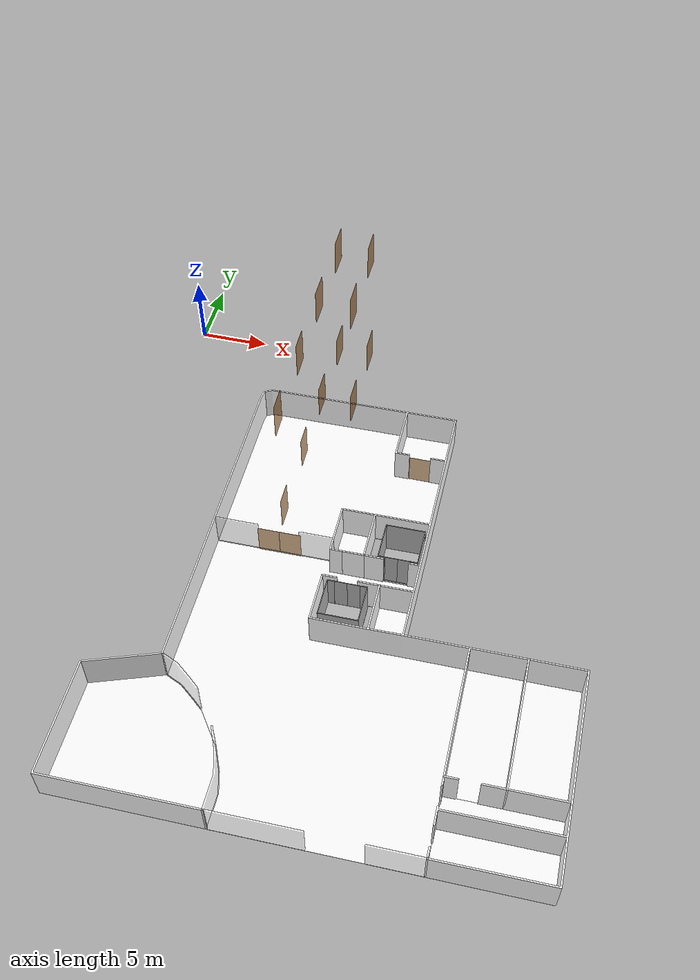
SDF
<sdf version="1.7">
 <world name="world">
  <include><uri>model://sun</uri></include>
  <model name="L1_door2">
   <pose>11.515053553551752 -19.600764056030513 0.0 0 0 -3.1369488994516814</pose>
   <link name="right">
    <pose>0.7374085791900343 0 1.11 0 0 0</pose>
    <visual name="right_visual">
     <geometry><box><size>1.4648171583800687 0.03 2.2</size></box></geometry>
     <material><ambient>0.5 0.25 0 0.6</ambient><diffuse>0.5 0.25 0 0.6</diffuse></material>
    </visual>
    <collision name="right_collision">
     <geometry><box><size>1.4648171583800687 0.03 2.2</size></box></geometry>
     <surface><contact><collide_bitmask>0x02</collide_bitmask></contact></surface>
    </collision>
    <inertial>
     <mass>50.0</mass>
     <inertia><ixx>20.17041666666667</ixx><iyy>29.107038781186084</iyy><izz>8.944122114519415</izz></inertia>
    </inertial>
   </link>
   <joint name="right_joint" type="prismatic">
    <parent>world</parent>
    <child>right</child>
    <pose>0.7374085791900343 0 1.11 0 0 0</pose>
    <axis>
     <xyz>1 0 0</xyz>
     <limit>
      <lower>0.0</lower>
      <upper>1.4748171583800687</upper>
      <effort>500.0</effort>
      <velocity>0.8</velocity>
     </limit>
     <dynamics damping="60.0" friction="50.0"/>
    </axis>
   </joint>
   <link name="left">
    <pose>-0.7374085791900343 0 1.11 0 0 0</pose>
    <visual name="left_visual">
     <geometry><box><size>1.4648171583800687 0.03 2.2</size></box></geometry>
     <material><ambient>0.5 0.25 0 0.6</ambient><diffuse>0.5 0.25 0 0.6</diffuse></material>
    </visual>
    <collision name="left_collision">
     <geometry><box><size>1.4648171583800687 0.03 2.2</size></box></geometry>
     <surface><contact><collide_bitmask>0x02</collide_bitmask></contact></surface>
    </collision>
    <inertial>
     <mass>50.0</mass>
     <inertia><ixx>20.17041666666667</ixx><iyy>29.107038781186084</iyy><izz>8.944122114519415</izz></inertia>
    </inertial>
   </link>
   <joint name="left_joint" type="prismatic">
    <parent>world</parent>
    <child>left</child>
    <pose>-0.7374085791900343 0 1.11 0 0 0</pose>
    <axis>
     <xyz>1 0 0</xyz>
     <limit>
      <lower>-1.4748171583800687</lower>
      <upper>0.0</upper>
      <effort>500.0</effort>
      <velocity>0.8</velocity>
     </limit>
     <dynamics damping="60.0" friction="50.0"/>
    </axis>
   </joint>
   <plugin name="sliding_door" filename="libsliding_door_plugin.so">
    <ros><namespace>/doors/L1_door2</namespace></ros>
    <right_joint>right_joint</right_joint>
    <left_joint>left_joint</left_joint>
    <open_distance>1.3</open_distance>
    <kp>100.0</kp>
    <kd>120.0</kd>
   </plugin>
  </model>
  <model name="L1_door4">
   <pose>19.549120677562087 -11.10939551168469 0.0 0 0 -0.009497018345977264</pose>
   <link name="right">
    <pose>0 0 1.11 0 0 0</pose>
    <visual name="right_visual">
     <geometry><box><size>1.5905993122484277 0.03 2.2</size></box></geometry>
     <material><ambient>0.5 0.25 0 0.6</ambient><diffuse>0.5 0.25 0 0.6</diffuse></material>
    </visual>
    <collision name="right_collision">
     <geometry><box><size>1.5905993122484277 0.03 2.2</size></box></geometry>
     <surface><contact><collide_bitmask>0x02</collide_bitmask></contact></surface>
    </collision>
    <inertial>
     <mass>50.0</mass>
     <inertia><ixx>20.17041666666667</ixx><iyy>30.70835905052155</iyy><izz>10.545442383854882</izz></inertia>
    </inertial>
   </link>
   <joint name="right_joint" type="revolute">
    <parent>world</parent>
    <child>right</child>
    <axis><xyz>0 0 1</xyz><limit><lower>0</lower><upper>1.57</upper></limit></axis>
    <pose>0.8002996561242138 0 0 0 0 0</pose>
   </joint>
  </model>
  <include><name>hotel_L1</name><uri>model://hotel_L1</uri></include>
  <model name="L2_door8">
   <pose>13.05848337594756 -22.704836665 8.0 0 0 1.5874688733681936</pose>
   <link name="right">
    <pose>0 0 1.11 0 0 0</pose>
    <visual name="right_visual">
     <geometry><box><size>1.382945881897145 0.03 2.2</size></box></geometry>
     <material><ambient>0.5 0.25 0 0.6</ambient><diffuse>0.5 0.25 0 0.6</diffuse></material>
    </visual>
    <collision name="right_collision">
     <geometry><box><size>1.382945881897145 0.03 2.2</size></box></geometry>
     <surface><contact><collide_bitmask>0x02</collide_bitmask></contact></surface>
    </collision>
    <inertial>
     <mass>50.0</mass>
     <inertia><ixx>20.17041666666667</ixx><iyy>28.13558046773447</iyy><izz>7.9726638010677995</izz></inertia>
    </inertial>
   </link>
   <joint name="right_joint" type="revolute">
    <parent>world</parent>
    <child>right</child>
    <axis><xyz>0 0 -1</xyz><limit><lower>0</lower><upper>1.57</upper></limit></axis>
    <pose>0.6964729409485725 0 0 0 0 0</pose>
   </joint>
  </model>
  <model name="L2_door9">
   <pose>13.018848337594756 -17.76158217016259 8.0 0 0 1.5874688733681936</pose>
   <link name="right">
    <pose>0 0 1.11 0 0 0</pose>
    <visual name="right_visual">
     <geometry><box><size>1.382945881897145 0.03 2.2</size></box></geometry>
     <material><ambient>0.5 0.25 0 0.6</ambient><diffuse>0.5 0.25 0 0.6</diffuse></material>
    </visual>
    <collision name="right_collision">
     <geometry><box><size>1.382945881897145 0.03 2.2</size></box></geometry>
     <surface><contact><collide_bitmask>0x02</collide_bitmask></contact></surface>
    </collision>
    <inertial>
     <mass>50.0</mass>
     <inertia><ixx>20.17041666666667</ixx><iyy>28.13558046773447</iyy><izz>7.9726638010677995</izz></inertia>
    </inertial>
   </link>
   <joint name="right_joint" type="revolute">
    <parent>world</parent>
    <child>right</child>
    <axis><xyz>0 0 -1</xyz><limit><lower>0</lower><upper>1.57</upper></limit></axis>
    <pose>0.6964729409485725 0 0 0 0 0</pose>
   </joint>
  </model>
  <model name="L2_door11">
   <pose>13.070832545372092 -8.29507317951618 8.0 0 0 1.571612558028263</pose>
   <link name="right">
    <pose>0 0 1.11 0 0 0</pose>
    <visual name="right_visual">
     <geometry><box><size>1.5950330216253457 0.03 2.2</size></box></geometry>
     <material><ambient>0.5 0.25 0 0.6</ambient><diffuse>0.5 0.25 0 0.6</diffuse></material>
    </visual>
    <collision name="right_collision">
     <geometry><box><size>1.5950330216253457 0.03 2.2</size></box></geometry>
     <surface><contact><collide_bitmask>0x02</collide_bitmask></contact></surface>
    </collision>
    <inertial>
     <mass>50.0</mass>
     <inertia><ixx>20.17041666666667</ixx><iyy>30.767209750313672</iyy><izz>10.604293083647002</izz></inertia>
    </inertial>
   </link>
   <joint name="right_joint" type="revolute">
    <parent>world</parent>
    <child>right</child>
    <axis><xyz>0 0 -1</xyz><limit><lower>0</lower><upper>1.57</upper></limit></axis>
    <pose>0.8025165108126728 0 0 0 0 0</pose>
   </joint>
  </model>
  <model name="L2_door16">
   <pose>15.15470442617677 -8.29507317951618 8.0 0 0 1.571612558028263</pose>
   <link name="right">
    <pose>0 0 1.11 0 0 0</pose>
    <visual name="right_visual">
     <geometry><box><size>1.5950330216253457 0.03 2.2</size></box></geometry>
     <material><ambient>0.5 0.25 0 0.6</ambient><diffuse>0.5 0.25 0 0.6</diffuse></material>
    </visual>
    <collision name="right_collision">
     <geometry><box><size>1.5950330216253457 0.03 2.2</size></box></geometry>
     <surface><contact><collide_bitmask>0x02</collide_bitmask></contact></surface>
    </collision>
    <inertial>
     <mass>50.0</mass>
     <inertia><ixx>20.17041666666667</ixx><iyy>30.767209750313672</iyy><izz>10.604293083647002</izz></inertia>
    </inertial>
   </link>
   <joint name="right_joint" type="revolute">
    <parent>world</parent>
    <child>right</child>
    <axis><xyz>0 0 -1</xyz><limit><lower>0</lower><upper>1.57</upper></limit></axis>
    <pose>0.8025165108126728 0 0 0 0 0</pose>
   </joint>
  </model>
  <model name="L2_door17">
   <pose>13.010832545372092 -13.028327675 8.0 0 0 1.571612558028263</pose>
   <link name="right">
    <pose>0 0 1.11 0 0 0</pose>
    <visual name="right_visual">
     <geometry><box><size>1.5950330216253457 0.03 2.2</size></box></geometry>
     <material><ambient>0.5 0.25 0 0.6</ambient><diffuse>0.5 0.25 0 0.6</diffuse></material>
    </visual>
    <collision name="right_collision">
     <geometry><box><size>1.5950330216253457 0.03 2.2</size></box></geometry>
     <surface><contact><collide_bitmask>0x02</collide_bitmask></contact></surface>
    </collision>
    <inertial>
     <mass>50.0</mass>
     <inertia><ixx>20.17041666666667</ixx><iyy>30.767209750313672</iyy><izz>10.604293083647002</izz></inertia>
    </inertial>
   </link>
   <joint name="right_joint" type="revolute">
    <parent>world</parent>
    <child>right</child>
    <axis><xyz>0 0 -1</xyz><limit><lower>0</lower><upper>1.57</upper></limit></axis>
    <pose>0.8025165108126728 0 0 0 0 0</pose>
   </joint>
  </model>
  <model name="L2_door18">
   <pose>15.15470442617677 -13.148327675 8.0 0 0 1.571612558028263</pose>
   <link name="right">
    <pose>0 0 1.11 0 0 0</pose>
    <visual name="right_visual">
     <geometry><box><size>1.5950330216253457 0.03 2.2</size></box></geometry>
     <material><ambient>0.5 0.25 0 0.6</ambient><diffuse>0.5 0.25 0 0.6</diffuse></material>
    </visual>
    <collision name="right_collision">
     <geometry><box><size>1.5950330216253457 0.03 2.2</size></box></geometry>
     <surface><contact><collide_bitmask>0x02</collide_bitmask></contact></surface>
    </collision>
    <inertial>
     <mass>50.0</mass>
     <inertia><ixx>20.17041666666667</ixx><iyy>30.767209750313672</iyy><izz>10.604293083647002</izz></inertia>
    </inertial>
   </link>
   <joint name="right_joint" type="revolute">
    <parent>world</parent>
    <child>right</child>
    <axis><xyz>0 0 -1</xyz><limit><lower>0</lower><upper>1.57</upper></limit></axis>
    <pose>0.8025165108126728 0 0 0 0 0</pose>
   </joint>
  </model>
  <model name="L3_door8">
   <pose>13.05848337594756 -22.704836665 16.0 0 0 1.5874688733681936</pose>
   <link name="right">
    <pose>0 0 1.11 0 0 0</pose>
    <visual name="right_visual">
     <geometry><box><size>1.382945881897145 0.03 2.2</size></box></geometry>
     <material><ambient>0.5 0.25 0 0.6</ambient><diffuse>0.5 0.25 0 0.6</diffuse></material>
    </visual>
    <collision name="right_collision">
     <geometry><box><size>1.382945881897145 0.03 2.2</size></box></geometry>
     <surface><contact><collide_bitmask>0x02</collide_bitmask></contact></surface>
    </collision>
    <inertial>
     <mass>50.0</mass>
     <inertia><ixx>20.17041666666667</ixx><iyy>28.13558046773447</iyy><izz>7.9726638010677995</izz></inertia>
    </inertial>
   </link>
   <joint name="right_joint" type="revolute">
    <parent>world</parent>
    <child>right</child>
    <axis><xyz>0 0 -1</xyz><limit><lower>0</lower><upper>1.57</upper></limit></axis>
    <pose>0.6964729409485725 0 0 0 0 0</pose>
   </joint>
  </model>
  <model name="L3_door9">
   <pose>13.018848337594756 -17.76158217016259 16.0 0 0 1.5874688733681936</pose>
   <link name="right">
    <pose>0 0 1.11 0 0 0</pose>
    <visual name="right_visual">
     <geometry><box><size>1.382945881897145 0.03 2.2</size></box></geometry>
     <material><ambient>0.5 0.25 0 0.6</ambient><diffuse>0.5 0.25 0 0.6</diffuse></material>
    </visual>
    <collision name="right_collision">
     <geometry><box><size>1.382945881897145 0.03 2.2</size></box></geometry>
     <surface><contact><collide_bitmask>0x02</collide_bitmask></contact></surface>
    </collision>
    <inertial>
     <mass>50.0</mass>
     <inertia><ixx>20.17041666666667</ixx><iyy>28.13558046773447</iyy><izz>7.9726638010677995</izz></inertia>
    </inertial>
   </link>
   <joint name="right_joint" type="revolute">
    <parent>world</parent>
    <child>right</child>
    <axis><xyz>0 0 -1</xyz><limit><lower>0</lower><upper>1.57</upper></limit></axis>
    <pose>0.6964729409485725 0 0 0 0 0</pose>
   </joint>
  </model>
  <model name="L3_door11">
   <pose>13.070832545372092 -8.29507317951618 16.0 0 0 1.571612558028263</pose>
   <link name="right">
    <pose>0 0 1.11 0 0 0</pose>
    <visual name="right_visual">
     <geometry><box><size>1.5950330216253457 0.03 2.2</size></box></geometry>
     <material><ambient>0.5 0.25 0 0.6</ambient><diffuse>0.5 0.25 0 0.6</diffuse></material>
    </visual>
    <collision name="right_collision">
     <geometry><box><size>1.5950330216253457 0.03 2.2</size></box></geometry>
     <surface><contact><collide_bitmask>0x02</collide_bitmask></contact></surface>
    </collision>
    <inertial>
     <mass>50.0</mass>
     <inertia><ixx>20.17041666666667</ixx><iyy>30.767209750313672</iyy><izz>10.604293083647002</izz></inertia>
    </inertial>
   </link>
   <joint name="right_joint" type="revolute">
    <parent>world</parent>
    <child>right</child>
    <axis><xyz>0 0 -1</xyz><limit><lower>0</lower><upper>1.57</upper></limit></axis>
    <pose>0.8025165108126728 0 0 0 0 0</pose>
   </joint>
  </model>
  <model name="L3_door16">
   <pose>15.15470442617677 -8.29507317951618 16.0 0 0 1.571612558028263</pose>
   <link name="right">
    <pose>0 0 1.11 0 0 0</pose>
    <visual name="right_visual">
     <geometry><box><size>1.5950330216253457 0.03 2.2</size></box></geometry>
     <material><ambient>0.5 0.25 0 0.6</ambient><diffuse>0.5 0.25 0 0.6</diffuse></material>
    </visual>
    <collision name="right_collision">
     <geometry><box><size>1.5950330216253457 0.03 2.2</size></box></geometry>
     <surface><contact><collide_bitmask>0x02</collide_bitmask></contact></surface>
    </collision>
    <inertial>
     <mass>50.0</mass>
     <inertia><ixx>20.17041666666667</ixx><iyy>30.767209750313672</iyy><izz>10.604293083647002</izz></inertia>
    </inertial>
   </link>
   <joint name="right_joint" type="revolute">
    <parent>world</parent>
    <child>right</child>
    <axis><xyz>0 0 -1</xyz><limit><lower>0</lower><upper>1.57</upper></limit></axis>
    <pose>0.8025165108126728 0 0 0 0 0</pose>
   </joint>
  </model>
  <model name="L3_door17">
   <pose>13.010832545372092 -13.028327675 16.0 0 0 1.571612558028263</pose>
   <link name="right">
    <pose>0 0 1.11 0 0 0</pose>
    <visual name="right_visual">
     <geometry><box><size>1.5950330216253457 0.03 2.2</size></box></geometry>
     <material><ambient>0.5 0.25 0 0.6</ambient><diffuse>0.5 0.25 0 0.6</diffuse></material>
    </visual>
    <collision name="right_collision">
     <geometry><box><size>1.5950330216253457 0.03 2.2</size></box></geometry>
     <surface><contact><collide_bitmask>0x02</collide_bitmask></contact></surface>
    </collision>
    <inertial>
     <mass>50.0</mass>
     <inertia><ixx>20.17041666666667</ixx><iyy>30.767209750313672</iyy><izz>10.604293083647002</izz></inertia>
    </inertial>
   </link>
   <joint name="right_joint" type="revolute">
    <parent>world</parent>
    <child>right</child>
    <axis><xyz>0 0 -1</xyz><limit><lower>0</lower><upper>1.57</upper></limit></axis>
    <pose>0.8025165108126728 0 0 0 0 0</pose>
   </joint>
  </model>
  <model name="L3_door18">
   <pose>15.15470442617677 -13.148327675 16.0 0 0 1.571612558028263</pose>
   <link name="right">
    <pose>0 0 1.11 0 0 0</pose>
    <visual name="right_visual">
     <geometry><box><size>1.5950330216253457 0.03 2.2</size></box></geometry>
     <material><ambient>0.5 0.25 0 0.6</ambient><diffuse>0.5 0.25 0 0.6</diffuse></material>
    </visual>
    <collision name="right_collision">
     <geometry><box><size>1.5950330216253457 0.03 2.2</size></box></geometry>
     <surface><contact><collide_bitmask>0x02</collide_bitmask></contact></surface>
    </collision>
    <inertial>
     <mass>50.0</mass>
     <inertia><ixx>20.17041666666667</ixx><iyy>30.767209750313672</iyy><izz>10.604293083647002</izz></inertia>
    </inertial>
   </link>
   <joint name="right_joint" type="revolute">
    <parent>world</parent>
    <child>right</child>
    <axis><xyz>0 0 -1</xyz><limit><lower>0</lower><upper>1.57</upper></limit></axis>
    <pose>0.8025165108126728 0 0 0 0 0</pose>
   </joint>
  </model>
  <model name="Lift1">
   <link name="platform">
    <gravity>false</gravity>
    <inertial>
     <mass>1200</mass>
     <inertia><ixx>729.2500000000001</ixx><iyy>729.2500000000001</iyy><izz>1458.0000000000002</izz></inertia>
    </inertial>
    <visual name="floor_visual">
     <pose>0 0 -0.025 0 0 0</pose>
     <geometry><box><size>2.7 2.7 0.05</size></box></geometry>
     <material>
      <ambient>0.5 0.5 0.5 1</ambient>
      <diffuse>0.7 0.7 0.7 1</diffuse>
      <specular>0.6 0.6 0.6 1</specular>
      <emissive>0.1 0.1 0.1 1</emissive>
     </material>
    </visual>
    <collision name="floor_collision">
     <pose>0 0 -0.025 0 0 0</pose>
     <geometry><box><size>2.7 2.7 0.05</size></box></geometry>
     <surface><contact><collide_bitmask>0x01</collide_bitmask></contact></surface>
    </collision>
    <visual name="frontwall1_visual">
     <pose>0.0 1.3250000000000002 1.25 0 0 0</pose>
     <geometry><box><size>2.7 0.05 2.5</size></box></geometry>
     <material>
      <ambient>0.5 0.5 0.5 1</ambient>
      <diffuse>0.7 0.7 0.7 1</diffuse>
      <specular>0.6 0.6 0.6 1</specular>
      <emissive>0.1 0.1 0.1 1</emissive>
     </material>
    </visual>
    <collision name="frontwall1_collision">
     <pose>0.0 1.3250000000000002 1.25 0 0 0</pose>
     <geometry><box><size>2.7 0.05 2.5</size></box></geometry>
     <surface><contact><collide_bitmask>0x01</collide_bitmask></contact></surface>
    </collision>
    <visual name="backwall1_visual">
     <pose>-1.1 -1.3250000000000002 1.25 0 0 0</pose>
     <geometry><box><size>0.5000000000000001 0.05 2.5</size></box></geometry>
     <material>
      <ambient>0.5 0.5 0.5 1</ambient>
      <diffuse>0.7 0.7 0.7 1</diffuse>
      <specular>0.6 0.6 0.6 1</specular>
      <emissive>0.1 0.1 0.1 1</emissive>
     </material>
    </visual>
    <collision name="backwall1_collision">
     <pose>-1.1 -1.3250000000000002 1.25 0 0 0</pose>
     <geometry><box><size>0.5000000000000001 0.05 2.5</size></box></geometry>
     <surface><contact><collide_bitmask>0x01</collide_bitmask></contact></surface>
    </collision>
    <visual name="backwall2_visual">
     <pose>1.1 -1.3250000000000002 1.25 0 0 0</pose>
     <geometry><box><size>0.5000000000000001 0.05 2.5</size></box></geometry>
     <material>
      <ambient>0.5 0.5 0.5 1</ambient>
      <diffuse>0.7 0.7 0.7 1</diffuse>
      <specular>0.6 0.6 0.6 1</specular>
      <emissive>0.1 0.1 0.1 1</emissive>
     </material>
    </visual>
    <collision name="backwall2_collision">
     <pose>1.1 -1.3250000000000002 1.25 0 0 0</pose>
     <geometry><box><size>0.5000000000000001 0.05 2.5</size></box></geometry>
     <surface><contact><collide_bitmask>0x01</collide_bitmask></contact></surface>
    </collision>
    <visual name="leftwall1_visual">
     <pose>-1.3250000000000002 0.0 1.25 0 0 1.5707963267948966</pose>
     <geometry><box><size>2.6 0.05 2.5</size></box></geometry>
     <material>
      <ambient>0.5 0.5 0.5 1</ambient>
      <diffuse>0.7 0.7 0.7 1</diffuse>
      <specular>0.6 0.6 0.6 1</specular>
      <emissive>0.1 0.1 0.1 1</emissive>
     </material>
    </visual>
    <collision name="leftwall1_collision">
     <pose>-1.3250000000000002 0.0 1.25 0 0 1.5707963267948966</pose>
     <geometry><box><size>2.6 0.05 2.5</size></box></geometry>
     <surface><contact><collide_bitmask>0x01</collide_bitmask></contact></surface>
    </collision>
    <visual name="rightwall1_visual">
     <pose>1.3250000000000002 0.0 1.25 0 0 1.5707963267948966</pose>
     <geometry><box><size>2.6 0.05 2.5</size></box></geometry>
     <material>
      <ambient>0.5 0.5 0.5 1</ambient>
      <diffuse>0.7 0.7 0.7 1</diffuse>
      <specular>0.6 0.6 0.6 1</specular>
      <emissive>0.1 0.1 0.1 1</emissive>
     </material>
    </visual>
    <collision name="rightwall1_collision">
     <pose>1.3250000000000002 0.0 1.25 0 0 1.5707963267948966</pose>
     <geometry><box><size>2.6 0.05 2.5</size></box></geometry>
     <surface><contact><collide_bitmask>0x01</collide_bitmask></contact></surface>
    </collision>
   </link>
   <link name="ramp_plate">
    <pose>0.05  -0.90  -0.02   0 0 0</pose>
    <inertial><mass>5.0</mass><inertia><ixx>0.2</ixx><iyy>0.3</iyy><izz>0.3</izz></inertia></inertial>
    <collision name="col">
     <geometry><box><size>1.5 0.75 0.03</size></box></geometry>
     <surface>
      <friction><ode><mu>1.2</mu><mu2>1.2</mu2></ode></friction>
      <bounce><restitution_coefficient>0.0</restitution_coefficient></bounce>
     </surface>
    </collision>
    <visual name="vis">
     <geometry><box><size>1.50 0.75 0.03</size></box></geometry>
     <material>
      <script><uri>file://media/materials/scripts/gazebo.material</uri><name>Gazebo/Black</name></script>
     </material>
    </visual>
    <gravity>false</gravity>
   </link>
   <joint name="ramp_slide_joint" type="prismatic">
    <parent>platform</parent>
    <child>ramp_plate</child>
    <axis>
     <xyz>0 -1 0</xyz>
     <limit><lower>-0.01</lower><upper>0.35</upper><effort>1e5</effort><velocity>1.0</velocity></limit>
     <dynamics damping="50.0" friction="1.0"/>
    </axis>
   </joint>
   <joint name="cabin_joint" type="prismatic">
    <parent>world</parent>
    <child>platform</child>
    <axis>
     <xyz>0 0 1</xyz>
     <limit><lower>0.0</lower><upper>16.0</upper><effort>1e6</effort></limit>
     <dynamics damping="80.0" friction="1.0"/>
    </axis>
   </joint>
   <link name="right_door">
    <pose>0.425 -1.3250000000000002 1.25 0 0 0</pose>
    <visual name="right_door_visual">
     <geometry><box><size>0.85 0.03 2.5</size></box></geometry>
     <material>
      <ambient>0.5 0.5 0.5 1</ambient>
      <diffuse>0.7 0.7 0.7 1</diffuse>
      <specular>0.6 0.6 0.6 1</specular>
      <emissive>0.1 0.1 0.1 1</emissive>
     </material>
    </visual>
    <collision name="right_door_collision">
     <geometry><box><size>0.85 0.03 2.5</size></box></geometry>
     <surface><contact><collide_bitmask>0x02</collide_bitmask></contact></surface>
    </collision>
   </link>
   <joint name="right_joint" type="prismatic">
    <parent>platform</parent>
    <child>right_door</child>
    <axis><xyz>1 0 0</xyz><limit><lower>0</lower><upper>0.85</upper></limit><dynamics damping="10.0"/></axis>
   </joint>
   <link name="left_door">
    <pose>-0.425 -1.3250000000000002 1.25 0 0 0</pose>
    <visual name="left_door_visual">
     <geometry><box><size>0.85 0.03 2.5</size></box></geometry>
     <material>
      <ambient>0.5 0.5 0.5 1</ambient>
      <diffuse>0.7 0.7 0.7 1</diffuse>
      <specular>0.6 0.6 0.6 1</specular>
      <emissive>0.1 0.1 0.1 1</emissive>
     </material>
    </visual>
    <collision name="left_door_collision">
     <geometry><box><size>0.85 0.03 2.5</size></box></geometry>
     <surface><contact><collide_bitmask>0x02</collide_bitmask></contact></surface>
    </collision>
   </link>
   <joint name="left_joint" type="prismatic">
    <parent>platform</parent>
    <child>left_door</child>
    <axis><xyz>1 0 0</xyz><limit><lower>-0.85</lower><upper>0</upper></limit><dynamics damping="10.0"/></axis>
   </joint>
   <plugin name="lift1_elevator_plugin" filename="libelevator_plugin.so">
    <ros><namespace>/lift1</namespace></ros>
    <cabin_joint>cabin_joint</cabin_joint>
    <right_joint>right_joint</right_joint>
    <left_joint>left_joint</left_joint>
    <floor_heights>0.0 8.0 16.0</floor_heights>
    <door_open_distance>0.85</door_open_distance>
    <kp>300.0</kp>
    <kd>120.0</kd>
    <vel_limit>0.6</vel_limit>
    <acc_limit>1.0</acc_limit>
    <pos_tolerance>0.007</pos_tolerance>
    <pos_tolerance_hyst>0.018</pos_tolerance_hyst>
    <kv_hold>250.0</kv_hold>
    <kd_hold>5.0</kd_hold>
    <kp_hold_force>9000.0</kp_hold_force>
    <c_hold_force>13000.0</c_hold_force>
    <ramp_slide_joint>ramp_slide_joint</ramp_slide_joint>
    <ramp_extend>0.55</ramp_extend>
    <ramp_retract>0.0</ramp_retract>
    <ramp_speed>0.4</ramp_speed>
   </plugin>
   <pose>19.766468308668816 -18.931265422387035 0 0 0 0.0</pose>
  </model>
  <model name="Lift2">
   <link name="platform">
    <gravity>false</gravity>
    <inertial>
     <mass>1200</mass>
     <inertia><ixx>729.2500000000001</ixx><iyy>729.2500000000001</iyy><izz>1458.0000000000002</izz></inertia>
    </inertial>
    <visual name="floor_visual">
     <pose>0 0 -0.025 0 0 0</pose>
     <geometry><box><size>2.7 2.7 0.05</size></box></geometry>
     <material>
      <ambient>0.5 0.5 0.5 1</ambient>
      <diffuse>0.7 0.7 0.7 1</diffuse>
      <specular>0.6 0.6 0.6 1</specular>
      <emissive>0.1 0.1 0.1 1</emissive>
     </material>
    </visual>
    <collision name="floor_collision">
     <pose>0 0 -0.025 0 0 0</pose>
     <geometry><box><size>2.7 2.7 0.05</size></box></geometry>
     <surface><contact><collide_bitmask>0x01</collide_bitmask></contact></surface>
    </collision>
    <visual name="frontwall1_visual">
     <pose>-1.1 1.3250000000000002 1.25 0 0 0</pose>
     <geometry><box><size>0.5000000000000001 0.05 2.5</size></box></geometry>
     <material>
      <ambient>0.5 0.5 0.5 1</ambient>
      <diffuse>0.7 0.7 0.7 1</diffuse>
      <specular>0.6 0.6 0.6 1</specular>
      <emissive>0.1 0.1 0.1 1</emissive>
     </material>
    </visual>
    <collision name="frontwall1_collision">
     <pose>-1.1 1.3250000000000002 1.25 0 0 0</pose>
     <geometry><box><size>0.5000000000000001 0.05 2.5</size></box></geometry>
     <surface><contact><collide_bitmask>0x01</collide_bitmask></contact></surface>
    </collision>
    <visual name="frontwall2_visual">
     <pose>1.1 1.3250000000000002 1.25 0 0 0</pose>
     <geometry><box><size>0.5000000000000001 0.05 2.5</size></box></geometry>
     <material>
      <ambient>0.5 0.5 0.5 1</ambient>
      <diffuse>0.7 0.7 0.7 1</diffuse>
      <specular>0.6 0.6 0.6 1</specular>
      <emissive>0.1 0.1 0.1 1</emissive>
     </material>
    </visual>
    <collision name="frontwall2_collision">
     <pose>1.1 1.3250000000000002 1.25 0 0 0</pose>
     <geometry><box><size>0.5000000000000001 0.05 2.5</size></box></geometry>
     <surface><contact><collide_bitmask>0x01</collide_bitmask></contact></surface>
    </collision>
    <visual name="backwall1_visual">
     <pose>0.0 -1.3250000000000002 1.25 0 0 0</pose>
     <geometry><box><size>2.7 0.05 2.5</size></box></geometry>
     <material>
      <ambient>0.5 0.5 0.5 1</ambient>
      <diffuse>0.7 0.7 0.7 1</diffuse>
      <specular>0.6 0.6 0.6 1</specular>
      <emissive>0.1 0.1 0.1 1</emissive>
     </material>
    </visual>
    <collision name="backwall1_collision">
     <pose>0.0 -1.3250000000000002 1.25 0 0 0</pose>
     <geometry><box><size>2.7 0.05 2.5</size></box></geometry>
     <surface><contact><collide_bitmask>0x01</collide_bitmask></contact></surface>
    </collision>
    <visual name="leftwall1_visual">
     <pose>-1.3250000000000002 0.0 1.25 0 0 1.5707963267948966</pose>
     <geometry><box><size>2.6 0.05 2.5</size></box></geometry>
     <material>
      <ambient>0.5 0.5 0.5 1</ambient>
      <diffuse>0.7 0.7 0.7 1</diffuse>
      <specular>0.6 0.6 0.6 1</specular>
      <emissive>0.1 0.1 0.1 1</emissive>
     </material>
    </visual>
    <collision name="leftwall1_collision">
     <pose>-1.3250000000000002 0.0 1.25 0 0 1.5707963267948966</pose>
     <geometry><box><size>2.6 0.05 2.5</size></box></geometry>
     <surface><contact><collide_bitmask>0x01</collide_bitmask></contact></surface>
    </collision>
    <visual name="rightwall1_visual">
     <pose>1.3250000000000002 0.0 1.25 0 0 1.5707963267948966</pose>
     <geometry><box><size>2.6 0.05 2.5</size></box></geometry>
     <material>
      <ambient>0.5 0.5 0.5 1</ambient>
      <diffuse>0.7 0.7 0.7 1</diffuse>
      <specular>0.6 0.6 0.6 1</specular>
      <emissive>0.1 0.1 0.1 1</emissive>
     </material>
    </visual>
    <collision name="rightwall1_collision">
     <pose>1.3250000000000002 0.0 1.25 0 0 1.5707963267948966</pose>
     <geometry><box><size>2.6 0.05 2.5</size></box></geometry>
     <surface><contact><collide_bitmask>0x01</collide_bitmask></contact></surface>
    </collision>
   </link>
   <link name="ramp_plate">
    <pose>0.03  0.90  -0.02   0 0 0</pose>
    <inertial><mass>5.0</mass><inertia><ixx>0.2</ixx><iyy>0.3</iyy><izz>0.3</izz></inertia></inertial>
    <collision name="col">
     <geometry><box><size>1.7 0.75 0.03</size></box></geometry>
     <surface>
      <friction><ode><mu>1.2</mu><mu2>1.2</mu2></ode></friction>
      <bounce><restitution_coefficient>0.0</restitution_coefficient></bounce>
     </surface>
    </collision>
    <visual name="vis">
     <geometry><box><size>1.70 0.75 0.03</size></box></geometry>
     <material>
      <script><uri>file://media/materials/scripts/gazebo.material</uri><name>Gazebo/Black</name></script>
     </material>
    </visual>
    <gravity>false</gravity>
   </link>
   <joint name="ramp_slide_joint" type="prismatic">
    <parent>platform</parent>
    <child>ramp_plate</child>
    <axis>
     <xyz>0 1 0</xyz>
     <limit><lower>-0.01</lower><upper>0.35</upper><effort>1e5</effort><velocity>1.0</velocity></limit>
     <dynamics damping="50.0" friction="1.0"/>
    </axis>
   </joint>
   <joint name="cabin_joint" type="prismatic">
    <parent>world</parent>
    <child>platform</child>
    <axis>
     <xyz>0 0 1</xyz>
     <limit><lower>0.0</lower><upper>16.0</upper><effort>1e6</effort></limit>
     <dynamics damping="80.0" friction="1.0"/>
    </axis>
   </joint>
   <link name="right_door">
    <pose>0.425 1.3250000000000002 1.25 0 0 0</pose>
    <visual name="right_door_visual">
     <geometry><box><size>0.85 0.03 2.5</size></box></geometry>
     <material>
      <ambient>0.5 0.5 0.5 1</ambient>
      <diffuse>0.7 0.7 0.7 1</diffuse>
      <specular>0.6 0.6 0.6 1</specular>
      <emissive>0.1 0.1 0.1 1</emissive>
     </material>
    </visual>
    <collision name="right_door_collision">
     <geometry><box><size>0.85 0.03 2.5</size></box></geometry>
     <surface><contact><collide_bitmask>0x02</collide_bitmask></contact></surface>
    </collision>
   </link>
   <joint name="right_joint" type="prismatic">
    <parent>platform</parent>
    <child>right_door</child>
    <axis><xyz>1 0 0</xyz><limit><lower>0</lower><upper>0.85</upper></limit><dynamics damping="10.0"/></axis>
   </joint>
   <link name="left_door">
    <pose>-0.425 1.3250000000000002 1.25 0 0 0</pose>
    <visual name="left_door_visual">
     <geometry><box><size>0.85 0.03 2.5</size></box></geometry>
     <material>
      <ambient>0.5 0.5 0.5 1</ambient>
      <diffuse>0.7 0.7 0.7 1</diffuse>
      <specular>0.6 0.6 0.6 1</specular>
      <emissive>0.1 0.1 0.1 1</emissive>
     </material>
    </visual>
    <collision name="left_door_collision">
     <geometry><box><size>0.85 0.03 2.5</size></box></geometry>
     <surface><contact><collide_bitmask>0x02</collide_bitmask></contact></surface>
    </collision>
   </link>
   <joint name="left_joint" type="prismatic">
    <parent>platform</parent>
    <child>left_door</child>
    <axis><xyz>1 0 0</xyz><limit><lower>-0.85</lower><upper>0</upper></limit><dynamics damping="10.0"/></axis>
   </joint>
   <pose>16.982458687729547 -24.220883702171648 0 0 0 0.0</pose>
   <plugin name="lift2_elevator_plugin" filename="libelevator_plugin.so">
    <ros><namespace>/lift2</namespace></ros>
    <cabin_joint>cabin_joint</cabin_joint>
    <right_joint>right_joint</right_joint>
    <left_joint>left_joint</left_joint>
    <floor_heights>0.0 8.0 16.0</floor_heights>
    <door_open_distance>0.85</door_open_distance>
    <kp>300.0</kp>
    <kd>120.0</kd>
    <vel_limit>0.6</vel_limit>
    <acc_limit>1.0</acc_limit>
    <pos_tolerance>0.007</pos_tolerance>
    <pos_tolerance_hyst>0.018</pos_tolerance_hyst>
    <kv_hold>250.0</kv_hold>
    <kd_hold>5.0</kd_hold>
    <kp_hold_force>9000.0</kp_hold_force>
    <c_hold_force>13000.0</c_hold_force>
    <ramp_slide_joint>ramp_slide_joint</ramp_slide_joint>
    <ramp_extend>0.55</ramp_extend>
    <ramp_retract>0.0</ramp_retract>
    <ramp_speed>0.4</ramp_speed>
   </plugin>
  </model>
 </world>
</sdf>
